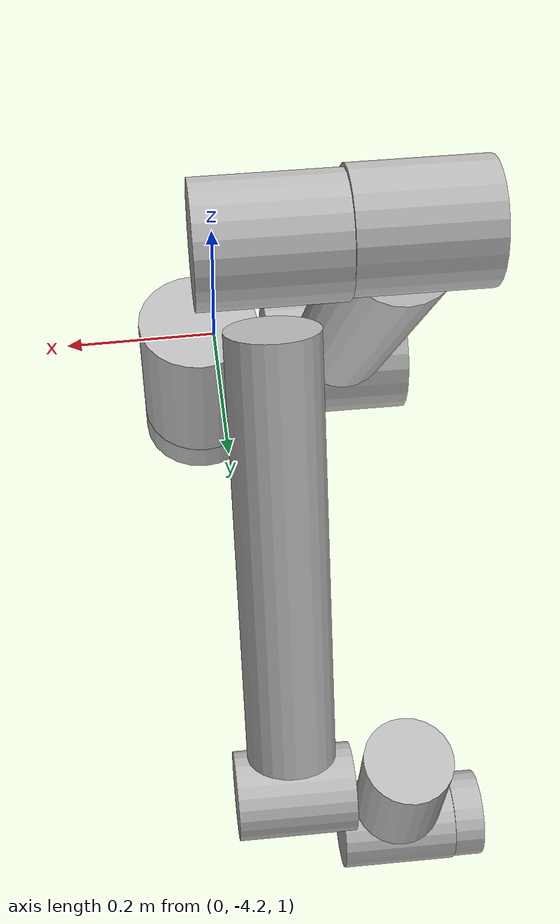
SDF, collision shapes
<sdf version="1.6">
 <model name="erica">
  <model name="tv16">
   <link name="link_0">
    <inertial>
     <mass>1</mass>
     <inertia>
      <ixx>0.166667</ixx>
      <ixy>0</ixy>
      <ixz>0</ixz>
      <iyy>0.166667</iyy>
      <iyz>0</iyz>
      <izz>0.166667</izz>
     </inertia>
    </inertial>
    <visual name="ModelPreview_0::link_0::visual_2">
     <geometry>
      <mesh><uri>model://erica/elements/tv16/meshes/tv16.stl</uri><scale>0.1 0.1 0.1</scale></mesh>
     </geometry>
     <material>
      <script><uri>file://media/materials/scripts/gazebo.material</uri><name>Gazebo/Grey</name></script>
     </material>
    </visual>
    <visual name="ModelPreview_0::link_0::visual_1">
     <pose>-0.45 -0.025 0.405 0 -0 0</pose>
     <geometry><box><size>1.43 0.03 0.76</size></box></geometry>
     <material>
      <script><uri>file://media/materials/scripts/gazebo.material</uri><name>Gazebo/Black</name></script>
     </material>
    </visual>
   </link>
   <static>1</static>
   <pose>-0.015148 -0.173097 1.0583 0 -0 0</pose>
  </model>
  <model name="tv16_clone">
   <link name="link_0">
    <inertial>
     <mass>1</mass>
     <inertia>
      <ixx>0.166667</ixx>
      <ixy>0</ixy>
      <ixz>0</ixz>
      <iyy>0.166667</iyy>
      <iyz>0</iyz>
      <izz>0.166667</izz>
     </inertia>
    </inertial>
    <visual name="ModelPreview_0::link_0::visual_2">
     <geometry>
      <mesh><uri>model://erica/elements/tv16/meshes/tv16.stl</uri><scale>0.1 0.1 0.1</scale></mesh>
     </geometry>
     <material>
      <script><uri>file://media/materials/scripts/gazebo.material</uri><name>Gazebo/Grey</name></script>
     </material>
    </visual>
    <visual name="ModelPreview_0::link_0::visual_1">
     <pose>-0.45 -0.025 0.405 0 -0 0</pose>
     <geometry><box><size>1.43 0.03 0.76</size></box></geometry>
     <material>
      <script><uri>file://media/materials/scripts/gazebo.material</uri><name>Gazebo/Black</name></script>
     </material>
    </visual>
   </link>
   <static>1</static>
   <pose>1.50993 -0.186211 1.0583 0 -0 0</pose>
  </model>
  <model name="ur10_clone_clone">
   <link name="base">
    <inertial>
     <mass>4</mass>
     <inertia>
      <ixx>0.00610633</ixx>
      <ixy>0</ixy>
      <ixz>0</ixz>
      <iyy>0.00610633</iyy>
      <iyz>0</iyz>
      <izz>0.01125</izz>
     </inertia>
    </inertial>
    <collision name="collision">
     <pose>0 0 0.019 0 -0 0</pose>
     <geometry><cylinder><radius>0.075</radius><length>0.038</length></cylinder></geometry>
    </collision>
    <visual name="visual"><geometry><mesh><uri>model://ur10/meshes/base.dae</uri></mesh></geometry></visual>
   </link>
   <link name="shoulder">
    <pose>0 0 0.1273 0 -0 0</pose>
    <inertial>
     <mass>7.778</mass>
     <inertia>
      <ixx>0.0314743</ixx>
      <ixy>0</ixy>
      <ixz>0</ixz>
      <iyy>0.0314743</iyy>
      <iyz>0</iyz>
      <izz>0.0218756</izz>
     </inertia>
    </inertial>
    <collision name="collision">
     <geometry><cylinder><radius>0.075</radius><length>0.177</length></cylinder></geometry>
    </collision>
    <visual name="visual"><geometry><mesh><uri>model://ur10/meshes/shoulder.dae</uri></mesh></geometry></visual>
   </link>
   <link name="upper_arm">
    <pose>0 0.220941 0.1273 0 0.495268 0</pose>
    <inertial>
     <pose>0 0 0.306 0 -0 0</pose>
     <mass>12.93</mass>
     <inertia>
      <ixx>0.421754</ixx>
      <ixy>0</ixy>
      <ixz>0</ixz>
      <iyy>0.421754</iyy>
      <iyz>0</iyz>
      <izz>0.0363656</izz>
     </inertia>
    </inertial>
    <collision name="collision1">
     <pose>0 -0.045 0 1.5707 -0 0</pose>
     <geometry><cylinder><radius>0.075</radius><length>0.177</length></cylinder></geometry>
    </collision>
    <collision name="collision2">
     <pose>0 -0.0436 0.32 0 -0 1.5707</pose>
     <geometry><cylinder><radius>0.058</radius><length>0.461</length></cylinder></geometry>
    </collision>
    <collision name="collision3">
     <pose>0 -0.04 0.613 1.5707 -0 0</pose>
     <geometry><cylinder><radius>0.058</radius><length>0.129</length></cylinder></geometry>
    </collision>
    <visual name="visual"><geometry><mesh><uri>model://ur10/meshes/upperarm.dae</uri></mesh></geometry></visual>
   </link>
   <link name="forearm">
    <pose>0.290881 0.049041 0.663009 -3.14159 0.593801 -3.14159</pose>
    <inertial>
     <pose>0 0 0.28615 0 -0 0</pose>
     <mass>3.87</mass>
     <inertia>
      <ixx>0.11107</ixx>
      <ixy>0</ixy>
      <ixz>0</ixz>
      <iyy>0.11107</iyy>
      <iyz>0</iyz>
      <izz>0.0108844</izz>
     </inertia>
    </inertial>
    <collision name="collision1">
     <pose>0 0 0.001 1.5707 -0 0</pose>
     <geometry><cylinder><radius>0.058</radius><length>0.136</length></cylinder></geometry>
    </collision>
    <collision name="collision2">
     <pose>0 0 0.305 0 -0 1.5707</pose>
     <geometry><cylinder><radius>0.045</radius><length>0.447</length></cylinder></geometry>
    </collision>
    <collision name="collision3">
     <pose>0 0.001 0.5735 1.5707 -0 0</pose>
     <geometry><cylinder><radius>0.045</radius><length>0.119</length></cylinder></geometry>
    </collision>
    <visual name="visua"><geometry><mesh><uri>model://ur10/meshes/forearm.dae</uri></mesh></geometry></visual>
   </link>
   <link name="wrist_1">
    <pose>0.612763 0.048289 0.188032 3.14159 -0 3.14159</pose>
    <inertial>
     <mass>1.96</mass>
     <inertia>
      <ixx>0.00510825</ixx>
      <ixy>0</ixy>
      <ixz>0</ixz>
      <iyy>0.00510825</iyy>
      <iyz>0</iyz>
      <izz>0.0055125</izz>
     </inertia>
    </inertial>
    <collision name="collision">
     <pose>0 0.115 0.0025 0 -0 0</pose>
     <geometry><cylinder><radius>0.0455</radius><length>0.119</length></cylinder></geometry>
    </collision>
    <visual name="visual"><geometry><mesh><uri>model://ur10/meshes/wrist1.dae</uri></mesh></geometry></visual>
   </link>
   <link name="wrist_2">
    <pose>0.612784 0.163041 0.188126 3.14159 -0 3.14159</pose>
    <inertial>
     <mass>1.96</mass>
     <inertia>
      <ixx>0.00510825</ixx>
      <ixy>0</ixy>
      <ixz>0</ixz>
      <iyy>0.00510825</iyy>
      <iyz>0</iyz>
      <izz>0.0055125</izz>
     </inertia>
    </inertial>
    <collision name="collision">
     <pose>0 0.002 0.11659 1.5707 -0 0</pose>
     <geometry><cylinder><radius>0.0455</radius><length>0.119</length></cylinder></geometry>
    </collision>
    <visual name="visual"><geometry><mesh><uri>model://ur10/meshes/wrist2.dae</uri></mesh></geometry></visual>
   </link>
   <link name="wrist_3">
    <pose>0.612058 0.163655 0.072656 3.14159 -0 3.14159</pose>
    <inertial>
     <mass>0.202</mass>
     <inertia>
      <ixx>0.000526462</ixx>
      <ixy>0</ixy>
      <ixz>0</ixz>
      <iyy>0.000526462</iyy>
      <iyz>0</iyz>
      <izz>0.000568125</izz>
     </inertia>
    </inertial>
    <collision name="collision">
     <pose>0 0.0765 0 1.5707 -0 0</pose>
     <geometry><cylinder><radius>0.045</radius><length>0.031</length></cylinder></geometry>
    </collision>
    <visual name="visual"><geometry><mesh><uri>model://ur10/meshes/wrist3.dae</uri></mesh></geometry></visual>
   </link>
   <static>1</static>
   <pose>0.026611 -4.12145 0.907896 0 -0 1.56</pose>
  </model>
  <static>1</static>
 </model>
</sdf>
